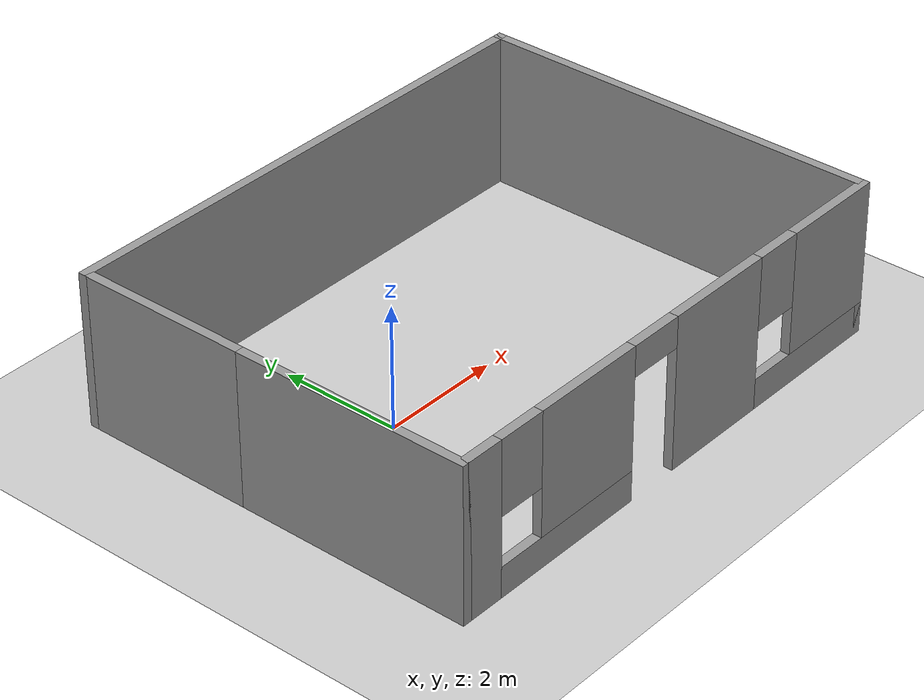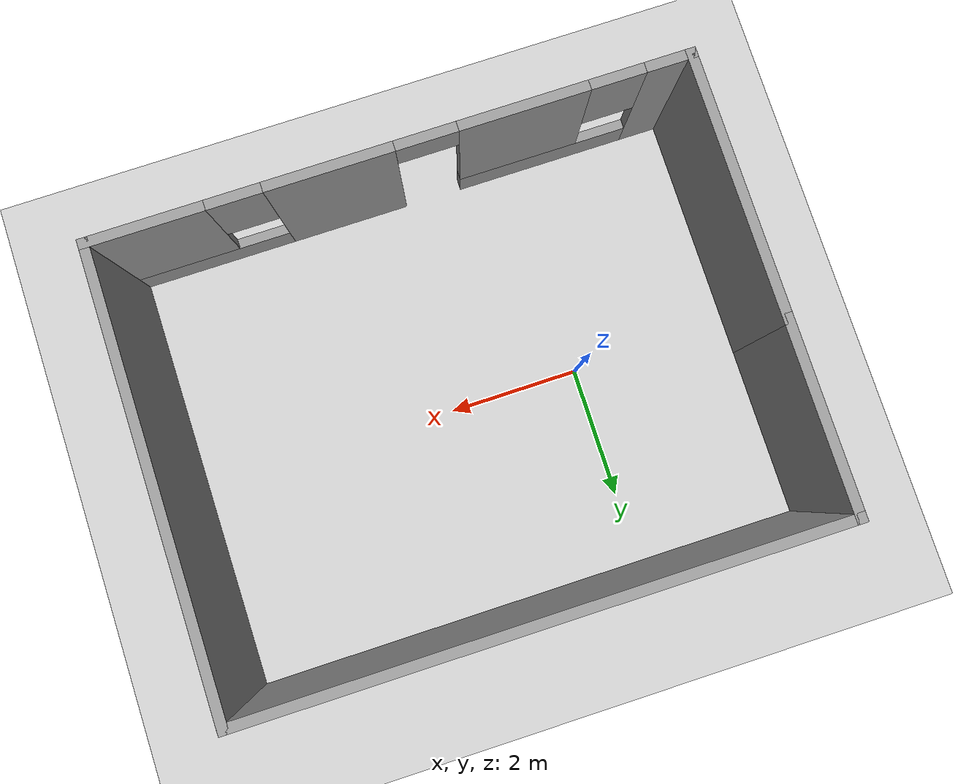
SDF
<sdf version="1.6">
 <world name="default">
  <light name="sun" type="directional">
   <pose>0 0 15 0 -0 0</pose>
   <diffuse>1 1 1 1</diffuse>
   <specular>0.1 0.1 0.1 1</specular>
   <attenuation>
    <range>1000</range>
    <constant>0.9</constant>
    <linear>0.01</linear>
    <quadratic>0.001</quadratic>
   </attenuation>
   <direction>-0.5 0.5 -1</direction>
  </light>
  <model name="ground_plane">
   <static>1</static>
   <link name="link">
    <collision name="collision">
     <geometry><plane><normal>0 0 1</normal><size>100 100</size></plane></geometry>
     <surface><friction><ode><mu>100</mu><mu2>50</mu2></ode></friction></surface>
    </collision>
    <visual name="visual">
     <transparency>1</transparency>
     <cast_shadows>0</cast_shadows>
     <geometry><plane><normal>0 0 1</normal><size>100 100</size></plane></geometry>
     <material>
      <script><uri>file://media/materials/scripts/gazebo.material</uri><name>Gazebo/Grey</name></script>
     </material>
    </visual>
   </link>
  </model>
  <gravity>0 0 -9.8</gravity>
  <magnetic_field>6e-06 2.3e-05 -4.2e-05</magnetic_field>
  <atmosphere type="adiabatic"/>
  <physics name="default_physics" default="0" type="ode">
   <max_step_size>0.001</max_step_size>
   <real_time_factor>1</real_time_factor>
   <real_time_update_rate>1000</real_time_update_rate>
  </physics>
  <scene><ambient>0.4 0.4 0.4 1</ambient><background>0.7 0.7 0.7 1</background><shadows>1</shadows></scene>
  <spherical_coordinates>
   <surface_model>EARTH_WGS84</surface_model>
   <latitude_deg>0</latitude_deg>
   <longitude_deg>0</longitude_deg>
   <elevation>0</elevation>
   <heading_deg>0</heading_deg>
  </spherical_coordinates>
  <model name="Untitled">
   <pose>1.74262 -0.140068 0 0 -0 0</pose>
   <link name="Wall_10">
    <collision name="Wall_10_Collision">
     <geometry><box><size>2.9 0.15 2.5</size></box></geometry>
     <pose>0 0 1.25 0 -0 0</pose>
    </collision>
    <visual name="Wall_10_Visual">
     <pose>0 0 1.25 0 -0 0</pose>
     <geometry><box><size>2.9 0.15 2.5</size></box></geometry>
     <material>
      <script><uri>file://media/materials/scripts/gazebo.material</uri><name>Gazebo/Grey</name></script>
      <ambient>1 1 1 1</ambient>
     </material>
    </visual>
    <pose>-4.3 1.925 0 0 0 -1.5708</pose>
   </link>
   <link name="Wall_6">
    <collision name="Wall_6_Collision">
     <geometry><box><size>4 0.15 2.5</size></box></geometry>
     <pose>0 0 1.25 0 -0 0</pose>
    </collision>
    <visual name="Wall_6_Visual">
     <pose>0 0 1.25 0 -0 0</pose>
     <geometry><box><size>4 0.15 2.5</size></box></geometry>
     <material>
      <script><uri>file://media/materials/scripts/gazebo.material</uri><name>Gazebo/Grey</name></script>
      <ambient>1 1 1 1</ambient>
     </material>
    </visual>
    <pose>-4.3 -1.375 0 0 0 -1.5708</pose>
   </link>
   <link name="Wall_7">
    <pose>0 -3.3 0 0 -0 0</pose>
    <visual name="Wall_7_Visual_0">
     <pose>-4.0055 0 1.25 0 -0 0</pose>
     <geometry><box><size>0.739008 0.15 2.5</size></box></geometry>
     <material>
      <script><uri>file://media/materials/scripts/gazebo.material</uri><name>Gazebo/Grey</name></script>
      <ambient>1 1 1 1</ambient>
     </material>
    </visual>
    <collision name="Wall_7_Collision_0">
     <geometry><box><size>0.739008 0.15 2.5</size></box></geometry>
     <pose>-4.0055 0 1.25 0 -0 0</pose>
    </collision>
    <visual name="Wall_7_Visual_1">
     <pose>0.885439 0 1.25 0 -0 0</pose>
     <geometry><box><size>1.86322 0.15 2.5</size></box></geometry>
     <material>
      <script><uri>file://media/materials/scripts/gazebo.material</uri><name>Gazebo/Grey</name></script>
      <ambient>1 1 1 1</ambient>
     </material>
    </visual>
    <collision name="Wall_7_Collision_1">
     <geometry><box><size>1.86322 0.15 2.5</size></box></geometry>
     <pose>0.885439 0 1.25 0 -0 0</pose>
    </collision>
    <visual name="Wall_7_Visual_2">
     <pose>-2.29108 0 0.25 0 -0 0</pose>
     <geometry><box><size>2.68982 0.15 0.5</size></box></geometry>
     <material>
      <script><uri>file://media/materials/scripts/gazebo.material</uri><name>Gazebo/Grey</name></script>
      <ambient>1 1 1 1</ambient>
     </material>
    </visual>
    <collision name="Wall_7_Collision_2">
     <geometry><box><size>2.68982 0.15 0.5</size></box></geometry>
     <pose>-2.29108 0 0.25 0 -0 0</pose>
    </collision>
    <visual name="Wall_7_Visual_3">
     <pose>3.09602 0 0.25 0 -0 0</pose>
     <geometry><box><size>2.55795 0.15 0.5</size></box></geometry>
     <material>
      <script><uri>file://media/materials/scripts/gazebo.material</uri><name>Gazebo/Grey</name></script>
      <ambient>1 1 1 1</ambient>
     </material>
    </visual>
    <collision name="Wall_7_Collision_3">
     <geometry><box><size>2.55795 0.15 0.5</size></box></geometry>
     <pose>3.09602 0 0.25 0 -0 0</pose>
    </collision>
    <visual name="Wall_7_Visual_4">
     <pose>-1.89108 0 1.5 0 -0 0</pose>
     <geometry><box><size>1.88982 0.15 2</size></box></geometry>
     <material>
      <script><uri>file://media/materials/scripts/gazebo.material</uri><name>Gazebo/Grey</name></script>
      <ambient>1 1 1 1</ambient>
     </material>
    </visual>
    <collision name="Wall_7_Collision_4">
     <geometry><box><size>1.88982 0.15 2</size></box></geometry>
     <pose>-1.89108 0 1.5 0 -0 0</pose>
    </collision>
    <visual name="Wall_7_Visual_5">
     <pose>-1.89108 0 1.5 0 -0 0</pose>
     <geometry><box><size>1.88982 0.15 2</size></box></geometry>
     <material>
      <script><uri>file://media/materials/scripts/gazebo.material</uri><name>Gazebo/Grey</name></script>
      <ambient>1 1 1 1</ambient>
     </material>
    </visual>
    <collision name="Wall_7_Collision_5">
     <geometry><box><size>1.88982 0.15 2</size></box></geometry>
     <pose>-1.89108 0 1.5 0 -0 0</pose>
    </collision>
    <visual name="Wall_7_Visual_6">
     <pose>3.49602 0 1.5 0 -0 0</pose>
     <geometry><box><size>1.75795 0.15 2</size></box></geometry>
     <material>
      <script><uri>file://media/materials/scripts/gazebo.material</uri><name>Gazebo/Grey</name></script>
      <ambient>1 1 1 1</ambient>
     </material>
    </visual>
    <collision name="Wall_7_Collision_6">
     <geometry><box><size>1.75795 0.15 2</size></box></geometry>
     <pose>3.49602 0 1.5 0 -0 0</pose>
    </collision>
    <visual name="Wall_7_Visual_7">
     <pose>-3.23599 0 1.9 0 -0 0</pose>
     <geometry><box><size>0.8 0.15 1.2</size></box></geometry>
     <material>
      <script><uri>file://media/materials/scripts/gazebo.material</uri><name>Gazebo/Grey</name></script>
      <ambient>1 1 1 1</ambient>
     </material>
    </visual>
    <collision name="Wall_7_Collision_7">
     <geometry><box><size>0.8 0.15 1.2</size></box></geometry>
     <pose>-3.23599 0 1.9 0 -0 0</pose>
    </collision>
    <visual name="Wall_7_Visual_8">
     <pose>2.21705 0 1.9 0 -0 0</pose>
     <geometry><box><size>0.8 0.15 1.2</size></box></geometry>
     <material>
      <script><uri>file://media/materials/scripts/gazebo.material</uri><name>Gazebo/Grey</name></script>
      <ambient>1 1 1 1</ambient>
     </material>
    </visual>
    <collision name="Wall_7_Collision_8">
     <geometry><box><size>0.8 0.15 1.2</size></box></geometry>
     <pose>2.21705 0 1.9 0 -0 0</pose>
    </collision>
    <visual name="Wall_7_Visual_9">
     <pose>-0.496171 0 2.25 0 -0 0</pose>
     <geometry><box><size>0.9 0.15 0.5</size></box></geometry>
     <material>
      <script><uri>file://media/materials/scripts/gazebo.material</uri><name>Gazebo/Grey</name></script>
      <ambient>1 1 1 1</ambient>
     </material>
    </visual>
    <collision name="Wall_7_Collision_9">
     <geometry><box><size>0.9 0.15 0.5</size></box></geometry>
     <pose>-0.496171 0 2.25 0 -0 0</pose>
    </collision>
    <visual name="Wall_7_Visual_10">
     <pose>-0.496171 0 2.25 0 -0 0</pose>
     <geometry><box><size>0.9 0.15 0.5</size></box></geometry>
     <material>
      <script><uri>file://media/materials/scripts/gazebo.material</uri><name>Gazebo/Grey</name></script>
      <ambient>1 1 1 1</ambient>
     </material>
    </visual>
    <collision name="Wall_7_Collision_10">
     <geometry><box><size>0.9 0.15 0.5</size></box></geometry>
     <pose>-0.496171 0 2.25 0 -0 0</pose>
    </collision>
   </link>
   <link name="Wall_8">
    <collision name="Wall_8_Collision">
     <geometry><box><size>6.75 0.15 2.5</size></box></geometry>
     <pose>0 0 1.25 0 -0 0</pose>
    </collision>
    <visual name="Wall_8_Visual">
     <pose>0 0 1.25 0 -0 0</pose>
     <geometry><box><size>6.75 0.15 2.5</size></box></geometry>
     <material>
      <script><uri>file://media/materials/scripts/gazebo.material</uri><name>Gazebo/Grey</name></script>
      <ambient>1 1 1 1</ambient>
     </material>
    </visual>
    <pose>4.3 0 0 0 -0 1.5708</pose>
   </link>
   <link name="Wall_9">
    <collision name="Wall_9_Collision">
     <geometry><box><size>8.75 0.15 2.5</size></box></geometry>
     <pose>0 0 1.25 0 -0 0</pose>
    </collision>
    <visual name="Wall_9_Visual">
     <pose>0 0 1.25 0 -0 0</pose>
     <geometry><box><size>8.75 0.15 2.5</size></box></geometry>
     <material>
      <script><uri>file://media/materials/scripts/gazebo.material</uri><name>Gazebo/Grey</name></script>
      <ambient>1 1 1 1</ambient>
     </material>
    </visual>
    <pose>0 3.3 0 0 -0 3.14159</pose>
   </link>
   <static>1</static>
  </model>
 </world>
</sdf>
